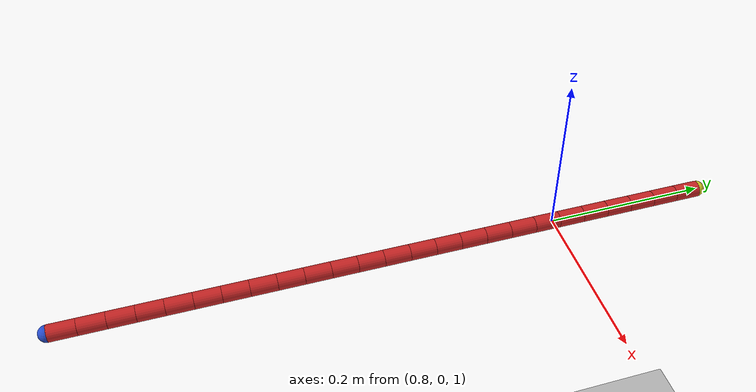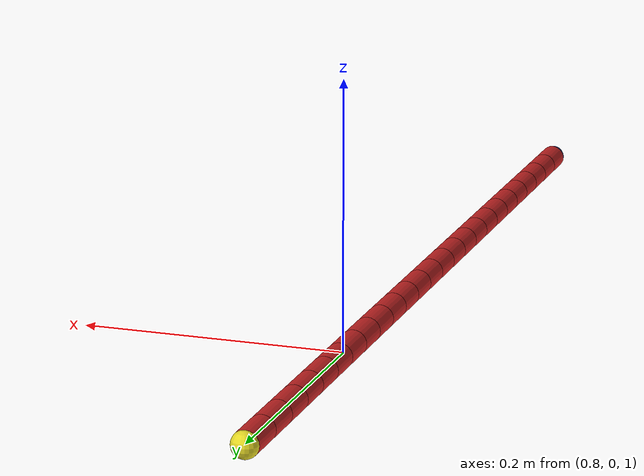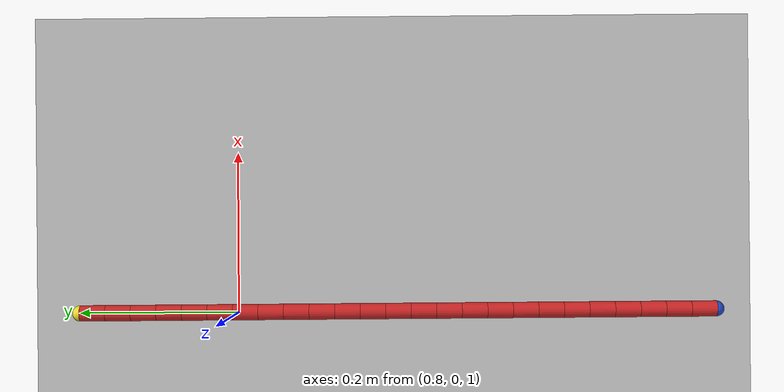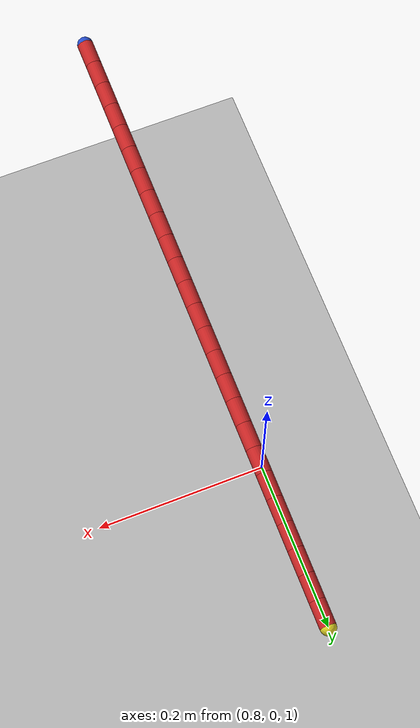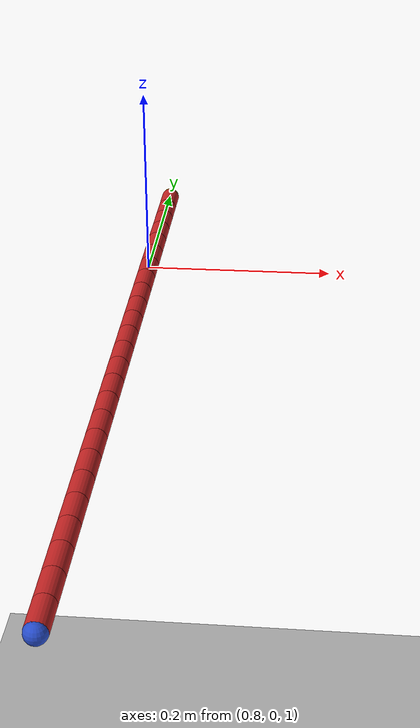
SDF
<sdf version="1.4">
 <world name="default">
  <scene>
   <grid>false</grid>
   <origin_visual>false</origin_visual>
   <sky><clouds><speed>12</speed></clouds></sky>
  </scene>
  <physics name="ode" type="ode">
   <max_step_size>0.01</max_step_size>
   <real_time_factor>1</real_time_factor>
   <real_time_update_rate>100</real_time_update_rate>
   <ode>
    <solver>
     <island_threads>2</island_threads>
     <type>quick</type>
     <iters>100</iters>
     <sor>1.0</sor>
     <use_dynamic_moi_rescaling>false</use_dynamic_moi_rescaling>
    </solver>
    <constraints><erp>0.8</erp></constraints>
   </ode>
  </physics>
  <plugin name="stepping_plugin" filename="libstepping_plugin.so"/>
  <plugin name="gazebo_ros_tf_plugin" filename="libgazebo_ros_tf_plugin.so"/>
  <plugin name="ros_link_attacher_plugin" filename="libgazebo_ros_link_attacher.so"/>
  <plugin name="collision_map_plugin" filename="libcollision_map_plugin.so"/>
  <include><uri>model://my_ground_plane</uri></include>
  <include><uri>model://sun</uri></include>
  <include><pose>0.8 -0.6 1.0 0 0 1.5707</pose><uri>model://rope_3d</uri></include>
 </world>
</sdf>

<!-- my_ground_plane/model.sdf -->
<sdf version="1.5">
    <model name="my_ground_plane">
        <static>true</static>
            <allow_auto_disable>true</allow_auto_disable>
        <link name="link">
            <collision name="collision">
                <geometry>
                    <plane>
                        <normal>0 0 1</normal>
                        <size>4 4</size>
                    </plane>
                </geometry>
                <surface>
                    <friction>
                        <ode>
                            <mu>1000</mu>
                            <mu2>1000</mu2>
                        </ode>
                    </friction>
                    <contact>
                        <ode>
                            <kp>1e15</kp>
                            <kd>1e10</kd>
                        </ode>
                    </contact>
                </surface>
            </collision>
            <visual name="visual">
                <cast_shadows>false</cast_shadows>
                <geometry>
                    <plane>
                        <normal>0 0 1</normal>
                        <size>4 4</size>
                    </plane>
                </geometry>
                <material>
                    <script>
                        <uri>model://my_ground_plane/concrete.material</uri>
                        <name>ConcreteTexture</name>
                    </script>
                </material>
            </visual>
        </link>
    </model>
</sdf>
